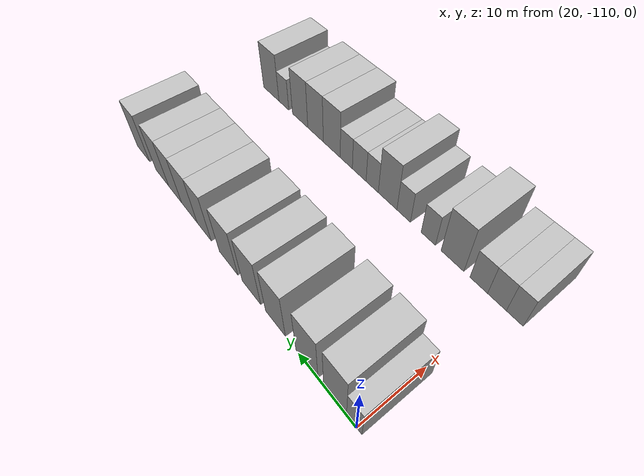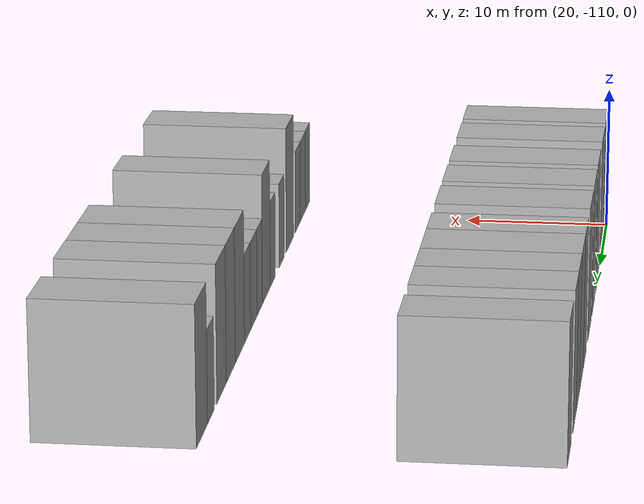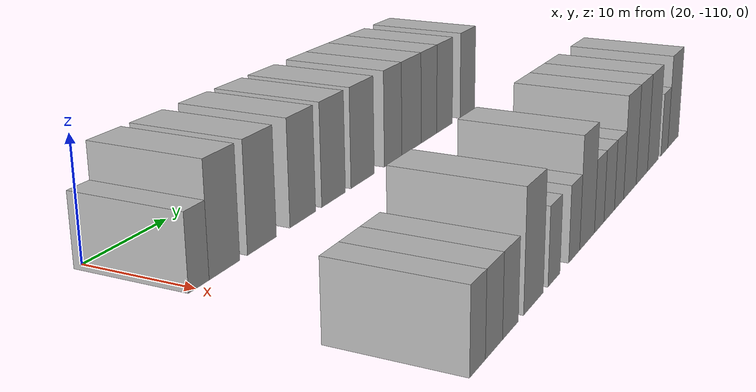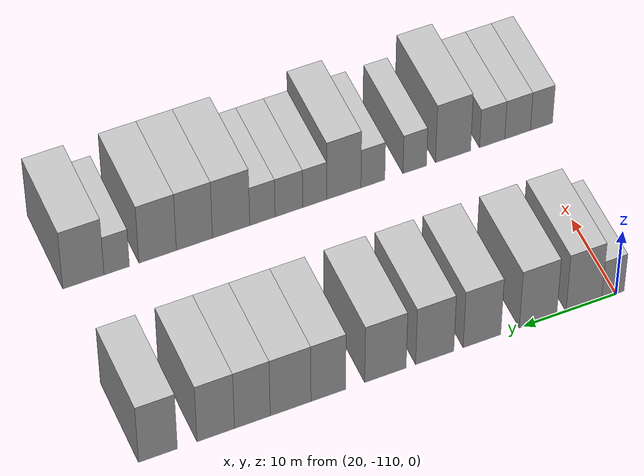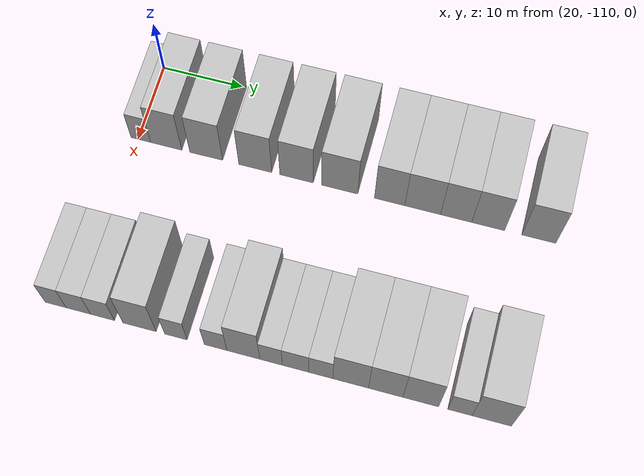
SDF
<sdf version="1.6">
 <world name="default">
  <model name="building_27">
   <static>1</static>
   <pose>25.0000 -109.6304 0 0.000000 0.000000 0.000000</pose>
   <link name="link">
    <pose>0 0 3.00 0 0 0</pose>
    <collision name="collision"><geometry><box><size>10.0000 2.4440 6.0000</size></box></geometry></collision>
    <visual name="visual">
     <cast_shadows>0</cast_shadows>
     <geometry><box><size>10.0000 2.4440 6.0000</size></box></geometry>
     <material>
      <script>
       <uri>model://HANNAS_wall/materials/scripts</uri>
       <uri>model://HANNAS_wall/materials/textures</uri>
       <name>vrc/HANNAS_wall</name>
      </script>
     </material>
    </visual>
   </link>
  </model>
  <model name="building_28">
   <static>1</static>
   <pose>25.0000 -106.4745 0 0.000000 0.000000 0.000000</pose>
   <link name="link">
    <pose>0 0 4.50 0 0 0</pose>
    <collision name="collision"><geometry><box><size>10.0000 3.8679 9.0000</size></box></geometry></collision>
    <visual name="visual">
     <cast_shadows>0</cast_shadows>
     <geometry><box><size>10.0000 3.8679 9.0000</size></box></geometry>
     <material>
      <script>
       <uri>model://HANNAS_wall/materials/scripts</uri>
       <uri>model://HANNAS_wall/materials/textures</uri>
       <name>vrc/HANNAS_wall</name>
      </script>
     </material>
    </visual>
   </link>
  </model>
  <model name="building_29">
   <static>1</static>
   <pose>25.0000 -101.5200 0 0.000000 0.000000 0.000000</pose>
   <link name="link">
    <pose>0 0 4.50 0 0 0</pose>
    <collision name="collision"><geometry><box><size>10.0000 4.0411 9.0000</size></box></geometry></collision>
    <visual name="visual">
     <cast_shadows>0</cast_shadows>
     <geometry><box><size>10.0000 4.0411 9.0000</size></box></geometry>
     <material>
      <script>
       <uri>model://HANNAS_wall/materials/scripts</uri>
       <uri>model://HANNAS_wall/materials/textures</uri>
       <name>vrc/HANNAS_wall</name>
      </script>
     </material>
    </visual>
   </link>
  </model>
  <model name="building_30">
   <static>1</static>
   <pose>25.0000 -95.4917 0 0.000000 0.000000 0.000000</pose>
   <link name="link">
    <pose>0 0 4.50 0 0 0</pose>
    <collision name="collision"><geometry><box><size>10.0000 4.0156 9.0000</size></box></geometry></collision>
    <visual name="visual">
     <cast_shadows>0</cast_shadows>
     <geometry><box><size>10.0000 4.0156 9.0000</size></box></geometry>
     <material>
      <script>
       <uri>model://HANNAS_wall/materials/scripts</uri>
       <uri>model://HANNAS_wall/materials/textures</uri>
       <name>vrc/HANNAS_wall</name>
      </script>
     </material>
    </visual>
   </link>
  </model>
  <model name="building_31">
   <static>1</static>
   <pose>25.0000 -90.4538 0 0.000000 0.000000 0.000000</pose>
   <link name="link">
    <pose>0 0 4.50 0 0 0</pose>
    <collision name="collision"><geometry><box><size>10.0000 4.0603 9.0000</size></box></geometry></collision>
    <visual name="visual">
     <cast_shadows>0</cast_shadows>
     <geometry><box><size>10.0000 4.0603 9.0000</size></box></geometry>
     <material>
      <script>
       <uri>model://HANNAS_wall/materials/scripts</uri>
       <uri>model://HANNAS_wall/materials/textures</uri>
       <name>vrc/HANNAS_wall</name>
      </script>
     </material>
    </visual>
   </link>
  </model>
  <model name="building_32">
   <static>1</static>
   <pose>25.0000 -85.2366 0 0.000000 0.000000 0.000000</pose>
   <link name="link">
    <pose>0 0 4.50 0 0 0</pose>
    <collision name="collision"><geometry><box><size>10.0000 4.3740 9.0000</size></box></geometry></collision>
    <visual name="visual">
     <cast_shadows>0</cast_shadows>
     <geometry><box><size>10.0000 4.3740 9.0000</size></box></geometry>
     <material>
      <script>
       <uri>model://HANNAS_wall/materials/scripts</uri>
       <uri>model://HANNAS_wall/materials/textures</uri>
       <name>vrc/HANNAS_wall</name>
      </script>
     </material>
    </visual>
   </link>
  </model>
  <model name="building_33">
   <static>1</static>
   <pose>25.0000 -79.2370 0 0.000000 0.000000 0.000000</pose>
   <link name="link">
    <pose>0 0 4.50 0 0 0</pose>
    <collision name="collision"><geometry><box><size>10.0000 3.6253 9.0000</size></box></geometry></collision>
    <visual name="visual">
     <cast_shadows>0</cast_shadows>
     <geometry><box><size>10.0000 3.6253 9.0000</size></box></geometry>
     <material>
      <script>
       <uri>model://HANNAS_wall/materials/scripts</uri>
       <uri>model://HANNAS_wall/materials/textures</uri>
       <name>vrc/HANNAS_wall</name>
      </script>
     </material>
    </visual>
   </link>
  </model>
  <model name="building_34">
   <static>1</static>
   <pose>25.0000 -75.3011 0 0.000000 0.000000 0.000000</pose>
   <link name="link">
    <pose>0 0 4.50 0 0 0</pose>
    <collision name="collision"><geometry><box><size>10.0000 4.2464 9.0000</size></box></geometry></collision>
    <visual name="visual">
     <cast_shadows>0</cast_shadows>
     <geometry><box><size>10.0000 4.2464 9.0000</size></box></geometry>
     <material>
      <script>
       <uri>model://HANNAS_wall/materials/scripts</uri>
       <uri>model://HANNAS_wall/materials/textures</uri>
       <name>vrc/HANNAS_wall</name>
      </script>
     </material>
    </visual>
   </link>
  </model>
  <model name="building_35">
   <static>1</static>
   <pose>25.0000 -71.3267 0 0.000000 0.000000 0.000000</pose>
   <link name="link">
    <pose>0 0 4.50 0 0 0</pose>
    <collision name="collision"><geometry><box><size>10.0000 3.7024 9.0000</size></box></geometry></collision>
    <visual name="visual">
     <cast_shadows>0</cast_shadows>
     <geometry><box><size>10.0000 3.7024 9.0000</size></box></geometry>
     <material>
      <script>
       <uri>model://HANNAS_wall/materials/scripts</uri>
       <uri>model://HANNAS_wall/materials/textures</uri>
       <name>vrc/HANNAS_wall</name>
      </script>
     </material>
    </visual>
   </link>
  </model>
  <model name="building_36">
   <static>1</static>
   <pose>25.0000 -67.5447 0 0.000000 0.000000 0.000000</pose>
   <link name="link">
    <pose>0 0 4.50 0 0 0</pose>
    <collision name="collision"><geometry><box><size>10.0000 3.8614 9.0000</size></box></geometry></collision>
    <visual name="visual">
     <cast_shadows>0</cast_shadows>
     <geometry><box><size>10.0000 3.8614 9.0000</size></box></geometry>
     <material>
      <script>
       <uri>model://HANNAS_wall/materials/scripts</uri>
       <uri>model://HANNAS_wall/materials/textures</uri>
       <name>vrc/HANNAS_wall</name>
      </script>
     </material>
    </visual>
   </link>
  </model>
  <model name="building_37">
   <static>1</static>
   <pose>25.0000 -61.6265 0 0.000000 0.000000 0.000000</pose>
   <link name="link">
    <pose>0 0 4.50 0 0 0</pose>
    <collision name="collision"><geometry><box><size>10.0000 3.9751 9.0000</size></box></geometry></collision>
    <visual name="visual">
     <cast_shadows>0</cast_shadows>
     <geometry><box><size>10.0000 3.9751 9.0000</size></box></geometry>
     <material>
      <script>
       <uri>model://HANNAS_wall/materials/scripts</uri>
       <uri>model://HANNAS_wall/materials/textures</uri>
       <name>vrc/HANNAS_wall</name>
      </script>
     </material>
    </visual>
   </link>
  </model>
  <model name="building_132">
   <static>1</static>
   <pose>47.0000 -112.3239 0 0.000000 0.000000 0.000000</pose>
   <link name="link">
    <pose>0 0 3.00 0 0 0</pose>
    <collision name="collision"><geometry><box><size>10.0000 2.4796 6.0000</size></box></geometry></collision>
    <visual name="visual">
     <cast_shadows>0</cast_shadows>
     <geometry><box><size>10.0000 2.4796 6.0000</size></box></geometry>
     <material>
      <script>
       <uri>model://HANNAS_wall/materials/scripts</uri>
       <uri>model://HANNAS_wall/materials/textures</uri>
       <name>vrc/HANNAS_wall</name>
      </script>
     </material>
    </visual>
   </link>
  </model>
  <model name="building_133">
   <static>1</static>
   <pose>47.0000 -109.6465 0 0.000000 0.000000 0.000000</pose>
   <link name="link">
    <pose>0 0 3.00 0 0 0</pose>
    <collision name="collision"><geometry><box><size>10.0000 2.8752 6.0000</size></box></geometry></collision>
    <visual name="visual">
     <cast_shadows>0</cast_shadows>
     <geometry><box><size>10.0000 2.8752 6.0000</size></box></geometry>
     <material>
      <script>
       <uri>model://HANNAS_wall/materials/scripts</uri>
       <uri>model://HANNAS_wall/materials/textures</uri>
       <name>vrc/HANNAS_wall</name>
      </script>
     </material>
    </visual>
   </link>
  </model>
  <model name="building_134">
   <static>1</static>
   <pose>47.0000 -106.7957 0 0.000000 0.000000 0.000000</pose>
   <link name="link">
    <pose>0 0 3.00 0 0 0</pose>
    <collision name="collision"><geometry><box><size>10.0000 2.8262 6.0000</size></box></geometry></collision>
    <visual name="visual">
     <cast_shadows>0</cast_shadows>
     <geometry><box><size>10.0000 2.8262 6.0000</size></box></geometry>
     <material>
      <script>
       <uri>model://HANNAS_wall/materials/scripts</uri>
       <uri>model://HANNAS_wall/materials/textures</uri>
       <name>vrc/HANNAS_wall</name>
      </script>
     </material>
    </visual>
   </link>
  </model>
  <model name="building_135">
   <static>1</static>
   <pose>47.0000 -102.4399 0 0.000000 0.000000 0.000000</pose>
   <link name="link">
    <pose>0 0 4.50 0 0 0</pose>
    <collision name="collision"><geometry><box><size>10.0000 3.8855 9.0000</size></box></geometry></collision>
    <visual name="visual">
     <cast_shadows>0</cast_shadows>
     <geometry><box><size>10.0000 3.8855 9.0000</size></box></geometry>
     <material>
      <script>
       <uri>model://HANNAS_wall/materials/scripts</uri>
       <uri>model://HANNAS_wall/materials/textures</uri>
       <name>vrc/HANNAS_wall</name>
      </script>
     </material>
    </visual>
   </link>
  </model>
  <model name="building_136">
   <static>1</static>
   <pose>47.0000 -98.1990 0 0.000000 0.000000 0.000000</pose>
   <link name="link">
    <pose>0 0 3.00 0 0 0</pose>
    <collision name="collision"><geometry><box><size>10.0000 2.5961 6.0000</size></box></geometry></collision>
    <visual name="visual">
     <cast_shadows>0</cast_shadows>
     <geometry><box><size>10.0000 2.5961 6.0000</size></box></geometry>
     <material>
      <script>
       <uri>model://HANNAS_wall/materials/scripts</uri>
       <uri>model://HANNAS_wall/materials/textures</uri>
       <name>vrc/HANNAS_wall</name>
      </script>
     </material>
    </visual>
   </link>
  </model>
  <model name="building_137">
   <static>1</static>
   <pose>47.0000 -93.5891 0 0.000000 0.000000 0.000000</pose>
   <link name="link">
    <pose>0 0 3.00 0 0 0</pose>
    <collision name="collision"><geometry><box><size>10.0000 2.6238 6.0000</size></box></geometry></collision>
    <visual name="visual">
     <cast_shadows>0</cast_shadows>
     <geometry><box><size>10.0000 2.6238 6.0000</size></box></geometry>
     <material>
      <script>
       <uri>model://HANNAS_wall/materials/scripts</uri>
       <uri>model://HANNAS_wall/materials/textures</uri>
       <name>vrc/HANNAS_wall</name>
      </script>
     </material>
    </visual>
   </link>
  </model>
  <model name="building_138">
   <static>1</static>
   <pose>47.0000 -90.3975 0 0.000000 0.000000 0.000000</pose>
   <link name="link">
    <pose>0 0 4.50 0 0 0</pose>
    <collision name="collision"><geometry><box><size>10.0000 3.7594 9.0000</size></box></geometry></collision>
    <visual name="visual">
     <cast_shadows>0</cast_shadows>
     <geometry><box><size>10.0000 3.7594 9.0000</size></box></geometry>
     <material>
      <script>
       <uri>model://HANNAS_wall/materials/scripts</uri>
       <uri>model://HANNAS_wall/materials/textures</uri>
       <name>vrc/HANNAS_wall</name>
      </script>
     </material>
    </visual>
   </link>
  </model>
  <model name="building_139">
   <static>1</static>
   <pose>47.0000 -87.2242 0 0.000000 0.000000 0.000000</pose>
   <link name="link">
    <pose>0 0 3.00 0 0 0</pose>
    <collision name="collision"><geometry><box><size>10.0000 2.5872 6.0000</size></box></geometry></collision>
    <visual name="visual">
     <cast_shadows>0</cast_shadows>
     <geometry><box><size>10.0000 2.5872 6.0000</size></box></geometry>
     <material>
      <script>
       <uri>model://HANNAS_wall/materials/scripts</uri>
       <uri>model://HANNAS_wall/materials/textures</uri>
       <name>vrc/HANNAS_wall</name>
      </script>
     </material>
    </visual>
   </link>
  </model>
  <model name="building_140">
   <static>1</static>
   <pose>47.0000 -84.4320 0 0.000000 0.000000 0.000000</pose>
   <link name="link">
    <pose>0 0 3.00 0 0 0</pose>
    <collision name="collision"><geometry><box><size>10.0000 2.9972 6.0000</size></box></geometry></collision>
    <visual name="visual">
     <cast_shadows>0</cast_shadows>
     <geometry><box><size>10.0000 2.9972 6.0000</size></box></geometry>
     <material>
      <script>
       <uri>model://HANNAS_wall/materials/scripts</uri>
       <uri>model://HANNAS_wall/materials/textures</uri>
       <name>vrc/HANNAS_wall</name>
      </script>
     </material>
    </visual>
   </link>
  </model>
  <model name="building_141">
   <static>1</static>
   <pose>47.0000 -81.5670 0 0.000000 0.000000 0.000000</pose>
   <link name="link">
    <pose>0 0 3.00 0 0 0</pose>
    <collision name="collision"><geometry><box><size>10.0000 2.7328 6.0000</size></box></geometry></collision>
    <visual name="visual">
     <cast_shadows>0</cast_shadows>
     <geometry><box><size>10.0000 2.7328 6.0000</size></box></geometry>
     <material>
      <script>
       <uri>model://HANNAS_wall/materials/scripts</uri>
       <uri>model://HANNAS_wall/materials/textures</uri>
       <name>vrc/HANNAS_wall</name>
      </script>
     </material>
    </visual>
   </link>
  </model>
  <model name="building_142">
   <static>1</static>
   <pose>47.0000 -78.1957 0 0.000000 0.000000 0.000000</pose>
   <link name="link">
    <pose>0 0 4.50 0 0 0</pose>
    <collision name="collision"><geometry><box><size>10.0000 4.0097 9.0000</size></box></geometry></collision>
    <visual name="visual">
     <cast_shadows>0</cast_shadows>
     <geometry><box><size>10.0000 4.0097 9.0000</size></box></geometry>
     <material>
      <script>
       <uri>model://HANNAS_wall/materials/scripts</uri>
       <uri>model://HANNAS_wall/materials/textures</uri>
       <name>vrc/HANNAS_wall</name>
      </script>
     </material>
    </visual>
   </link>
  </model>
  <model name="building_143">
   <static>1</static>
   <pose>47.0000 -74.2604 0 0.000000 0.000000 0.000000</pose>
   <link name="link">
    <pose>0 0 4.50 0 0 0</pose>
    <collision name="collision"><geometry><box><size>10.0000 3.8609 9.0000</size></box></geometry></collision>
    <visual name="visual">
     <cast_shadows>0</cast_shadows>
     <geometry><box><size>10.0000 3.8609 9.0000</size></box></geometry>
     <material>
      <script>
       <uri>model://HANNAS_wall/materials/scripts</uri>
       <uri>model://HANNAS_wall/materials/textures</uri>
       <name>vrc/HANNAS_wall</name>
      </script>
     </material>
    </visual>
   </link>
  </model>
  <model name="building_144">
   <static>1</static>
   <pose>47.0000 -70.3363 0 0.000000 0.000000 0.000000</pose>
   <link name="link">
    <pose>0 0 4.50 0 0 0</pose>
    <collision name="collision"><geometry><box><size>10.0000 3.9872 9.0000</size></box></geometry></collision>
    <visual name="visual">
     <cast_shadows>0</cast_shadows>
     <geometry><box><size>10.0000 3.9872 9.0000</size></box></geometry>
     <material>
      <script>
       <uri>model://HANNAS_wall/materials/scripts</uri>
       <uri>model://HANNAS_wall/materials/textures</uri>
       <name>vrc/HANNAS_wall</name>
      </script>
     </material>
    </visual>
   </link>
  </model>
  <model name="building_145">
   <static>1</static>
   <pose>47.0000 -66.0009 0 0.000000 0.000000 0.000000</pose>
   <link name="link">
    <pose>0 0 3.00 0 0 0</pose>
    <collision name="collision"><geometry><box><size>10.0000 2.6835 6.0000</size></box></geometry></collision>
    <visual name="visual">
     <cast_shadows>0</cast_shadows>
     <geometry><box><size>10.0000 2.6835 6.0000</size></box></geometry>
     <material>
      <script>
       <uri>model://HANNAS_wall/materials/scripts</uri>
       <uri>model://HANNAS_wall/materials/textures</uri>
       <name>vrc/HANNAS_wall</name>
      </script>
     </material>
    </visual>
   </link>
  </model>
  <model name="building_146">
   <static>1</static>
   <pose>47.0000 -62.4841 0 0.000000 0.000000 0.000000</pose>
   <link name="link">
    <pose>0 0 4.50 0 0 0</pose>
    <collision name="collision"><geometry><box><size>10.0000 4.3500 9.0000</size></box></geometry></collision>
    <visual name="visual">
     <cast_shadows>0</cast_shadows>
     <geometry><box><size>10.0000 4.3500 9.0000</size></box></geometry>
     <material>
      <script>
       <uri>model://HANNAS_wall/materials/scripts</uri>
       <uri>model://HANNAS_wall/materials/textures</uri>
       <name>vrc/HANNAS_wall</name>
      </script>
     </material>
    </visual>
   </link>
  </model>
 </world>
</sdf>
